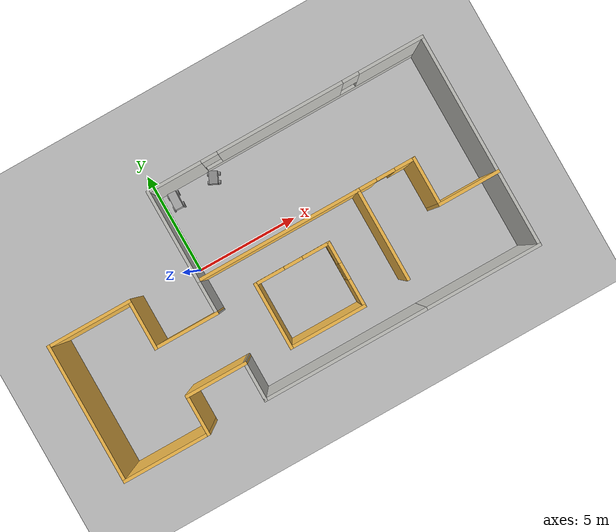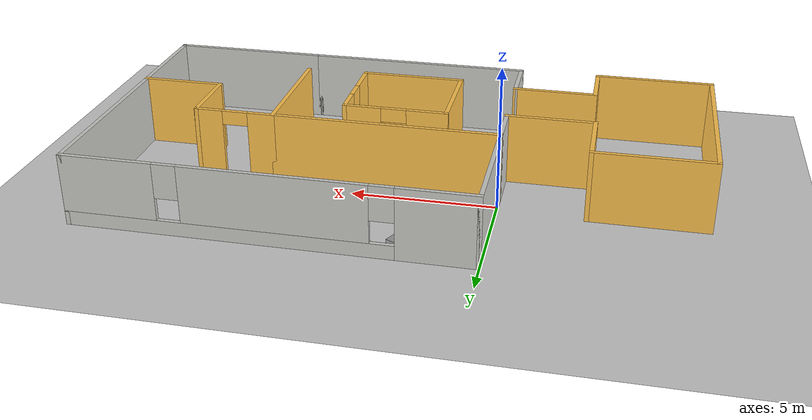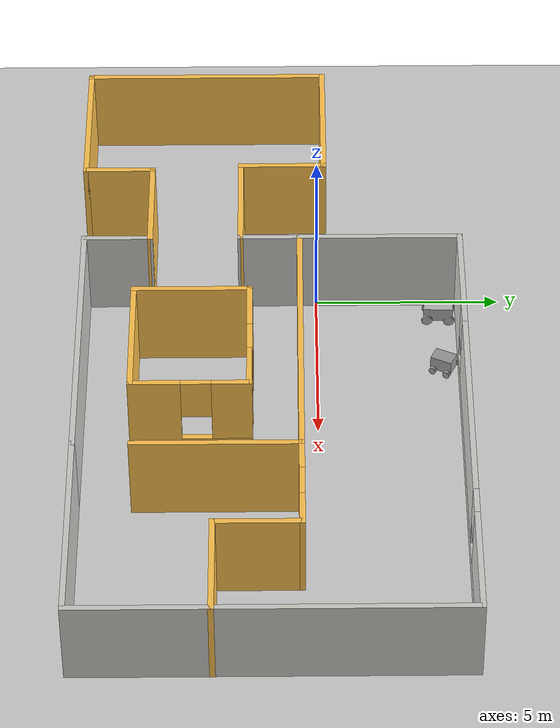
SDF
<sdf version="1.6">
 <world name="default">
  <model name="ground_plane">
   <static>1</static>
   <link name="link">
    <collision name="collision">
     <geometry><plane><normal>0 0 1</normal><size>100 100</size></plane></geometry>
     <surface>
      <contact><collide_bitmask>65535</collide_bitmask></contact>
      <friction><ode><mu>100</mu><mu2>50</mu2></ode></friction>
     </surface>
    </collision>
    <visual name="visual">
     <cast_shadows>0</cast_shadows>
     <geometry><plane><normal>0 0 1</normal><size>100 100</size></plane></geometry>
     <material>
      <script><uri>file://media/materials/scripts/gazebo.material</uri><name>Gazebo/Grey</name></script>
     </material>
    </visual>
   </link>
  </model>
  <model name="building">
   <pose>3.27409 -1.24254 0 0 -0 0</pose>
   <link name="Wall_1">
    <collision name="Wall_1_Collision">
     <geometry><box><size>0.15 0.15 2.5</size></box></geometry>
     <pose>0 0 1.25 0 -0 0</pose>
    </collision>
    <visual name="Wall_1_Visual">
     <pose>0 0 1.25 0 -0 0</pose>
     <geometry><box><size>0.15 0.15 2.5</size></box></geometry>
     <material>
      <script><uri>file://media/materials/scripts/gazebo.material</uri><name>Gazebo/Grey</name></script>
      <ambient>1 1 1 1</ambient>
     </material>
     <meta><layer>0</layer></meta>
    </visual>
    <pose>-3.253 -5.0694 0 0 -0 0</pose>
   </link>
   <link name="Wall_10">
    <collision name="Wall_10_Collision">
     <geometry><box><size>3 0.15 2.5</size></box></geometry>
     <pose>0 0 1.25 0 -0 0</pose>
    </collision>
    <visual name="Wall_10_Visual">
     <pose>0 0 1.25 0 -0 0</pose>
     <geometry><box><size>3 0.15 2.5</size></box></geometry>
     <material>
      <script><uri>file://media/materials/scripts/gazebo.material</uri><name>Gazebo/Grey</name></script>
      <ambient>1 0.764706 0.305882 1</ambient>
     </material>
     <meta><layer>0</layer></meta>
    </visual>
    <pose>8.772 -1.4694 0 0 -0 3.14159</pose>
   </link>
   <link name="Wall_11">
    <collision name="Wall_11_Collision">
     <geometry><box><size>2.4 0.15 2.5</size></box></geometry>
     <pose>0 0 1.25 0 -0 0</pose>
    </collision>
    <visual name="Wall_11_Visual">
     <pose>0 0 1.25 0 -0 0</pose>
     <geometry><box><size>2.4 0.15 2.5</size></box></geometry>
     <material>
      <script><uri>file://media/materials/scripts/gazebo.material</uri><name>Gazebo/Grey</name></script>
      <ambient>1 0.764706 0.305882 1</ambient>
     </material>
     <meta><layer>0</layer></meta>
    </visual>
    <pose>7.347 -0.344396 0 0 -0 1.5708</pose>
   </link>
   <link name="Wall_14">
    <pose>5.972 0.780604 0 0 -0 0</pose>
    <visual name="Wall_14_Visual_0">
     <pose>-0.96253 0 1.25 0 -0 0</pose>
     <geometry><box><size>0.974941 0.15 2.5</size></box></geometry>
     <material>
      <script><uri>file://media/materials/scripts/gazebo.material</uri><name>Gazebo/Grey</name></script>
      <ambient>1 0.764706 0.305882 1</ambient>
     </material>
     <meta><layer>0</layer></meta>
    </visual>
    <collision name="Wall_14_Collision_0">
     <geometry><box><size>0.974941 0.15 2.5</size></box></geometry>
     <pose>-0.96253 0 1.25 0 -0 0</pose>
    </collision>
    <visual name="Wall_14_Visual_1">
     <pose>0.93747 0 1.25 0 -0 0</pose>
     <geometry><box><size>1.02506 0.15 2.5</size></box></geometry>
     <material>
      <script><uri>file://media/materials/scripts/gazebo.material</uri><name>Gazebo/Grey</name></script>
      <ambient>1 0.764706 0.305882 1</ambient>
     </material>
     <meta><layer>0</layer></meta>
    </visual>
    <collision name="Wall_14_Collision_1">
     <geometry><box><size>1.02506 0.15 2.5</size></box></geometry>
     <pose>0.93747 0 1.25 0 -0 0</pose>
    </collision>
    <visual name="Wall_14_Visual_2">
     <pose>-0.025059 0 2.25 0 -0 0</pose>
     <geometry><box><size>0.9 0.15 0.5</size></box></geometry>
     <material>
      <script><uri>file://media/materials/scripts/gazebo.material</uri><name>Gazebo/Grey</name></script>
      <ambient>1 0.764706 0.305882 1</ambient>
     </material>
     <meta><layer>0</layer></meta>
    </visual>
    <collision name="Wall_14_Collision_2">
     <geometry><box><size>0.9 0.15 0.5</size></box></geometry>
     <pose>-0.025059 0 2.25 0 -0 0</pose>
    </collision>
   </link>
   <link name="Wall_17">
    <collision name="Wall_17_Collision">
     <geometry><box><size>3 0.15 2.5</size></box></geometry>
     <pose>0 0 1.25 0 -0 0</pose>
    </collision>
    <visual name="Wall_17_Visual">
     <pose>0 0 1.25 0 -0 0</pose>
     <geometry><box><size>3 0.15 2.5</size></box></geometry>
     <material>
      <script><uri>file://media/materials/scripts/gazebo.material</uri><name>Gazebo/Grey</name></script>
      <ambient>1 0.764706 0.305882 1</ambient>
     </material>
     <meta><layer>0</layer></meta>
    </visual>
    <pose>-4.67154 -0.826749 0 0 -0 3.14159</pose>
   </link>
   <link name="Wall_19">
    <collision name="Wall_19_Collision">
     <geometry><box><size>3 0.15 2.5</size></box></geometry>
     <pose>0 0 1.25 0 -0 0</pose>
    </collision>
    <visual name="Wall_19_Visual">
     <pose>0 0 1.25 0 -0 0</pose>
     <geometry><box><size>3 0.15 2.5</size></box></geometry>
     <material>
      <script><uri>file://media/materials/scripts/gazebo.material</uri><name>Gazebo/Grey</name></script>
      <ambient>1 0.764706 0.305882 1</ambient>
     </material>
     <meta><layer>0</layer></meta>
    </visual>
    <pose>-4.67154 -3.2806 0 0 -0 3.14159</pose>
   </link>
   <link name="Wall_20">
    <collision name="Wall_20_Collision">
     <geometry><box><size>2 0.15 2.5</size></box></geometry>
     <pose>0 0 1.25 0 -0 0</pose>
    </collision>
    <visual name="Wall_20_Visual">
     <pose>0 0 1.25 0 -0 0</pose>
     <geometry><box><size>2 0.15 2.5</size></box></geometry>
     <material>
      <script><uri>file://media/materials/scripts/gazebo.material</uri><name>Gazebo/Grey</name></script>
      <ambient>1 0.764706 0.305882 1</ambient>
     </material>
     <meta><layer>0</layer></meta>
    </visual>
    <pose>-6.09654 -4.2056 0 0 0 -1.5708</pose>
   </link>
   <link name="Wall_21">
    <collision name="Wall_21_Collision">
     <geometry><box><size>4.25 0.15 2.5</size></box></geometry>
     <pose>0 0 1.25 0 -0 0</pose>
    </collision>
    <visual name="Wall_21_Visual">
     <pose>0 0 1.25 0 -0 0</pose>
     <geometry><box><size>4.25 0.15 2.5</size></box></geometry>
     <material>
      <script><uri>file://media/materials/scripts/gazebo.material</uri><name>Gazebo/Grey</name></script>
      <ambient>1 0.764706 0.305882 1</ambient>
     </material>
     <meta><layer>0</layer></meta>
    </visual>
    <pose>-8.14654 -5.13061 0 0 -0 3.14159</pose>
   </link>
   <link name="Wall_22">
    <collision name="Wall_22_Collision">
     <geometry><box><size>6.75 0.15 2.5</size></box></geometry>
     <pose>0 0 1.25 0 -0 0</pose>
    </collision>
    <visual name="Wall_22_Visual">
     <pose>0 0 1.25 0 -0 0</pose>
     <geometry><box><size>6.75 0.15 2.5</size></box></geometry>
     <material>
      <script><uri>file://media/materials/scripts/gazebo.material</uri><name>Gazebo/Grey</name></script>
      <ambient>1 0.764706 0.305882 1</ambient>
     </material>
     <meta><layer>0</layer></meta>
    </visual>
    <pose>-10.1968 -1.8305 0 0 -0 1.57087</pose>
   </link>
   <link name="Wall_23">
    <collision name="Wall_23_Collision">
     <geometry><box><size>4.1 0.15 2.5</size></box></geometry>
     <pose>0 0 1.25 0 -0 0</pose>
    </collision>
    <visual name="Wall_23_Visual">
     <pose>0 0 1.25 0 -0 0</pose>
     <geometry><box><size>4.1 0.15 2.5</size></box></geometry>
     <material>
      <script><uri>file://media/materials/scripts/gazebo.material</uri><name>Gazebo/Grey</name></script>
      <ambient>1 0.764706 0.305882 1</ambient>
     </material>
     <meta><layer>0</layer></meta>
    </visual>
    <pose>-8.222 1.4696 0 0 -0 0</pose>
   </link>
   <link name="Wall_25">
    <collision name="Wall_25_Collision">
     <geometry><box><size>2.45 0.15 2.5</size></box></geometry>
     <pose>0 0 1.25 0 -0 0</pose>
    </collision>
    <visual name="Wall_25_Visual">
     <pose>0 0 1.25 0 -0 0</pose>
     <geometry><box><size>2.45 0.15 2.5</size></box></geometry>
     <material>
      <script><uri>file://media/materials/scripts/gazebo.material</uri><name>Gazebo/Grey</name></script>
      <ambient>1 0.764706 0.305882 1</ambient>
     </material>
     <meta><layer>0</layer></meta>
    </visual>
    <pose>-6.247 0.319604 0 0 0 -1.5708</pose>
   </link>
   <link name="Wall_28">
    <collision name="Wall_28_Collision">
     <geometry><box><size>3.25 0.15 2.5</size></box></geometry>
     <pose>0 0 1.25 0 -0 0</pose>
    </collision>
    <visual name="Wall_28_Visual">
     <pose>0 0 1.25 0 -0 0</pose>
     <geometry><box><size>3.25 0.15 2.5</size></box></geometry>
     <material>
      <script><uri>file://media/materials/scripts/gazebo.material</uri><name>Gazebo/Grey</name></script>
      <ambient>1 0.764706 0.305882 1</ambient>
     </material>
     <meta><layer>0</layer></meta>
    </visual>
    <pose>-1.19495 -2.11527 0 0 0 -1.5708</pose>
   </link>
   <link name="Wall_29">
    <collision name="Wall_29_Collision">
     <geometry><box><size>3.75 0.15 2.5</size></box></geometry>
     <pose>0 0 1.25 0 -0 0</pose>
    </collision>
    <visual name="Wall_29_Visual">
     <pose>0 0 1.25 0 -0 0</pose>
     <geometry><box><size>3.75 0.15 2.5</size></box></geometry>
     <material>
      <script><uri>file://media/materials/scripts/gazebo.material</uri><name>Gazebo/Grey</name></script>
      <ambient>1 0.764706 0.305882 1</ambient>
     </material>
     <meta><layer>0</layer></meta>
    </visual>
    <pose>0.605046 -3.66527 0 0 -0 0</pose>
   </link>
   <link name="Wall_30">
    <pose>2.40505 -2.11527 0 0 -0 1.5708</pose>
    <visual name="Wall_30_Visual_0">
     <pose>-0.931418 0 1.25 0 -0 0</pose>
     <geometry><box><size>1.38716 0.15 2.5</size></box></geometry>
     <material>
      <script><uri>file://media/materials/scripts/gazebo.material</uri><name>Gazebo/Grey</name></script>
      <ambient>1 0.764706 0.305882 1</ambient>
     </material>
     <meta><layer>0</layer></meta>
    </visual>
    <collision name="Wall_30_Collision_0">
     <geometry><box><size>1.38716 0.15 2.5</size></box></geometry>
     <pose>-0.931418 0 1.25 0 -0 0</pose>
    </collision>
    <visual name="Wall_30_Visual_1">
     <pose>0.693582 0 0.25 0 -0 0</pose>
     <geometry><box><size>1.86284 0.15 0.5</size></box></geometry>
     <material>
      <script><uri>file://media/materials/scripts/gazebo.material</uri><name>Gazebo/Grey</name></script>
      <ambient>1 0.764706 0.305882 1</ambient>
     </material>
     <meta><layer>0</layer></meta>
    </visual>
    <collision name="Wall_30_Collision_1">
     <geometry><box><size>1.86284 0.15 0.5</size></box></geometry>
     <pose>0.693582 0 0.25 0 -0 0</pose>
    </collision>
    <visual name="Wall_30_Visual_2">
     <pose>1.09358 0 1.5 0 -0 0</pose>
     <geometry><box><size>1.06284 0.15 2</size></box></geometry>
     <material>
      <script><uri>file://media/materials/scripts/gazebo.material</uri><name>Gazebo/Grey</name></script>
      <ambient>1 0.764706 0.305882 1</ambient>
     </material>
     <meta><layer>0</layer></meta>
    </visual>
    <collision name="Wall_30_Collision_2">
     <geometry><box><size>1.06284 0.15 2</size></box></geometry>
     <pose>1.09358 0 1.5 0 -0 0</pose>
    </collision>
    <visual name="Wall_30_Visual_3">
     <pose>0.162163 0 1.9 0 -0 0</pose>
     <geometry><box><size>0.8 0.15 1.2</size></box></geometry>
     <material>
      <script><uri>file://media/materials/scripts/gazebo.material</uri><name>Gazebo/Grey</name></script>
      <ambient>1 0.764706 0.305882 1</ambient>
     </material>
     <meta><layer>0</layer></meta>
    </visual>
    <collision name="Wall_30_Collision_3">
     <geometry><box><size>0.8 0.15 1.2</size></box></geometry>
     <pose>0.162163 0 1.9 0 -0 0</pose>
    </collision>
   </link>
   <link name="Wall_31">
    <pose>0.605046 -0.565272 0 0 -0 3.14159</pose>
    <visual name="Wall_31_Visual_0">
     <pose>-1.18772 0 1.25 0 -0 0</pose>
     <geometry><box><size>1.37455 0.15 2.5</size></box></geometry>
     <material>
      <script><uri>file://media/materials/scripts/gazebo.material</uri><name>Gazebo/Grey</name></script>
      <ambient>1 0.764706 0.305882 1</ambient>
     </material>
     <meta><layer>0</layer></meta>
    </visual>
    <collision name="Wall_31_Collision_0">
     <geometry><box><size>1.37455 0.15 2.5</size></box></geometry>
     <pose>-1.18772 0 1.25 0 -0 0</pose>
    </collision>
    <visual name="Wall_31_Visual_1">
     <pose>1.13728 0 1.25 0 -0 0</pose>
     <geometry><box><size>1.47545 0.15 2.5</size></box></geometry>
     <material>
      <script><uri>file://media/materials/scripts/gazebo.material</uri><name>Gazebo/Grey</name></script>
      <ambient>1 0.764706 0.305882 1</ambient>
     </material>
     <meta><layer>0</layer></meta>
    </visual>
    <collision name="Wall_31_Collision_1">
     <geometry><box><size>1.47545 0.15 2.5</size></box></geometry>
     <pose>1.13728 0 1.25 0 -0 0</pose>
    </collision>
    <visual name="Wall_31_Visual_2">
     <pose>-0.050449 0 2.25 0 -0 0</pose>
     <geometry><box><size>0.9 0.15 0.5</size></box></geometry>
     <material>
      <script><uri>file://media/materials/scripts/gazebo.material</uri><name>Gazebo/Grey</name></script>
      <ambient>1 0.764706 0.305882 1</ambient>
     </material>
     <meta><layer>0</layer></meta>
    </visual>
    <collision name="Wall_31_Collision_2">
     <geometry><box><size>0.9 0.15 0.5</size></box></geometry>
     <pose>-0.050449 0 2.25 0 -0 0</pose>
    </collision>
   </link>
   <link name="Wall_33">
    <collision name="Wall_33_Collision">
     <geometry><box><size>4.5 0.15 2.5</size></box></geometry>
     <pose>0 0 1.25 0 -0 0</pose>
    </collision>
    <visual name="Wall_33_Visual">
     <pose>0 0 1.25 0 -0 0</pose>
     <geometry><box><size>4.5 0.15 2.5</size></box></geometry>
     <material>
      <script><uri>file://media/materials/scripts/gazebo.material</uri><name>Gazebo/CeilingTiled</name></script>
      <ambient>1 1 1 1</ambient>
     </material>
     <meta><layer>0</layer></meta>
    </visual>
    <pose>-3.253 2.9556 0 0 -0 1.5708</pose>
   </link>
   <link name="Wall_34">
    <pose>3.472 5.1306 0 0 -0 0</pose>
    <visual name="Wall_34_Visual_0">
     <pose>-5.46145 0 1.25 0 -0 0</pose>
     <geometry><box><size>2.6771 0.15 2.5</size></box></geometry>
     <material>
      <script><uri>file://media/materials/scripts/gazebo.material</uri><name>Gazebo/CeilingTiled</name></script>
      <ambient>1 1 1 1</ambient>
     </material>
     <meta><layer>0</layer></meta>
    </visual>
    <collision name="Wall_34_Collision_0">
     <geometry><box><size>2.6771 0.15 2.5</size></box></geometry>
     <pose>-5.46145 0 1.25 0 -0 0</pose>
    </collision>
    <visual name="Wall_34_Visual_1">
     <pose>1.33855 0 0.25 0 -0 0</pose>
     <geometry><box><size>10.9229 0.15 0.5</size></box></geometry>
     <material>
      <script><uri>file://media/materials/scripts/gazebo.material</uri><name>Gazebo/CeilingTiled</name></script>
      <ambient>1 1 1 1</ambient>
     </material>
     <meta><layer>0</layer></meta>
    </visual>
    <collision name="Wall_34_Collision_1">
     <geometry><box><size>10.9229 0.15 0.5</size></box></geometry>
     <pose>1.33855 0 0.25 0 -0 0</pose>
    </collision>
    <visual name="Wall_34_Visual_2">
     <pose>-0.25158 0 1.5 0 -0 0</pose>
     <geometry><box><size>6.14265 0.15 2</size></box></geometry>
     <material>
      <script><uri>file://media/materials/scripts/gazebo.material</uri><name>Gazebo/CeilingTiled</name></script>
      <ambient>1 1 1 1</ambient>
     </material>
     <meta><layer>0</layer></meta>
    </visual>
    <collision name="Wall_34_Collision_2">
     <geometry><box><size>6.14265 0.15 2</size></box></geometry>
     <pose>-0.25158 0 1.5 0 -0 0</pose>
    </collision>
    <visual name="Wall_34_Visual_3">
     <pose>5.20987 0 1.5 0 -0 0</pose>
     <geometry><box><size>3.18025 0.15 2</size></box></geometry>
     <material>
      <script><uri>file://media/materials/scripts/gazebo.material</uri><name>Gazebo/CeilingTiled</name></script>
      <ambient>1 1 1 1</ambient>
     </material>
     <meta><layer>0</layer></meta>
    </visual>
    <collision name="Wall_34_Collision_3">
     <geometry><box><size>3.18025 0.15 2</size></box></geometry>
     <pose>5.20987 0 1.5 0 -0 0</pose>
    </collision>
    <visual name="Wall_34_Visual_4">
     <pose>-3.7229 0 1.9 0 -0 0</pose>
     <geometry><box><size>0.8 0.15 1.2</size></box></geometry>
     <material>
      <script><uri>file://media/materials/scripts/gazebo.material</uri><name>Gazebo/CeilingTiled</name></script>
      <ambient>1 1 1 1</ambient>
     </material>
     <meta><layer>0</layer></meta>
    </visual>
    <collision name="Wall_34_Collision_4">
     <geometry><box><size>0.8 0.15 1.2</size></box></geometry>
     <pose>-3.7229 0 1.9 0 -0 0</pose>
    </collision>
    <visual name="Wall_34_Visual_5">
     <pose>3.21975 0 1.9 0 -0 0</pose>
     <geometry><box><size>0.8 0.15 1.2</size></box></geometry>
     <material>
      <script><uri>file://media/materials/scripts/gazebo.material</uri><name>Gazebo/CeilingTiled</name></script>
      <ambient>1 1 1 1</ambient>
     </material>
     <meta><layer>0</layer></meta>
    </visual>
    <collision name="Wall_34_Collision_5">
     <geometry><box><size>0.8 0.15 1.2</size></box></geometry>
     <pose>3.21975 0 1.9 0 -0 0</pose>
    </collision>
   </link>
   <link name="Wall_37">
    <collision name="Wall_37_Collision">
     <geometry><box><size>6.75 0.15 2.5</size></box></geometry>
     <pose>0 0 1.25 0 -0 0</pose>
    </collision>
    <visual name="Wall_37_Visual">
     <pose>0 0 1.25 0 -0 0</pose>
     <geometry><box><size>6.75 0.15 2.5</size></box></geometry>
     <material>
      <script><uri>file://media/materials/scripts/gazebo.material</uri><name>Gazebo/CeilingTiled</name></script>
      <ambient>1 1 1 1</ambient>
     </material>
     <meta><layer>0</layer></meta>
    </visual>
    <pose>10.197 1.8306 0 0 0 -1.5708</pose>
   </link>
   <link name="Wall_4">
    <collision name="Wall_4_Collision">
     <geometry><box><size>8 0.15 2.5</size></box></geometry>
     <pose>0 0 1.25 0 -0 0</pose>
    </collision>
    <visual name="Wall_4_Visual">
     <pose>0 0 1.25 0 -0 0</pose>
     <geometry><box><size>8 0.15 2.5</size></box></geometry>
     <material>
      <script><uri>file://media/materials/scripts/gazebo.material</uri><name>Gazebo/Grey</name></script>
      <ambient>1 0.764706 0.305882 1</ambient>
     </material>
     <meta><layer>0</layer></meta>
    </visual>
    <pose>0.672003 0.780604 0 0 -0 0</pose>
   </link>
   <link name="Wall_40">
    <collision name="Wall_40_Collision">
     <geometry><box><size>1.75737 0.15 2.5</size></box></geometry>
     <pose>0 0 1.25 0 -0 0</pose>
    </collision>
    <visual name="Wall_40_Visual">
     <pose>0 0 1.25 0 -0 0</pose>
     <geometry><box><size>1.75737 0.15 2.5</size></box></geometry>
     <material>
      <script><uri>file://media/materials/scripts/gazebo.material</uri><name>Gazebo/CeilingTiled</name></script>
      <ambient>1 1 1 1</ambient>
     </material>
     <meta><layer>0</layer></meta>
    </visual>
    <pose>-3.24977 -0.023072 0 0 -0 1.57481</pose>
   </link>
   <link name="Wall_42">
    <collision name="Wall_42_Collision">
     <geometry><box><size>1.9388 0.15 2.5</size></box></geometry>
     <pose>0 0 1.25 0 -0 0</pose>
    </collision>
    <visual name="Wall_42_Visual">
     <pose>0 0 1.25 0 -0 0</pose>
     <geometry><box><size>1.9388 0.15 2.5</size></box></geometry>
     <material>
      <script><uri>file://media/materials/scripts/gazebo.material</uri><name>Gazebo/CeilingTiled</name></script>
      <ambient>1 1 1 1</ambient>
     </material>
     <meta><layer>0</layer></meta>
    </visual>
    <pose>-3.24977 -4.175 0 0 -0 1.56719</pose>
   </link>
   <link name="Wall_44">
    <collision name="Wall_44_Collision">
     <geometry><box><size>4.5 0.15 2.5</size></box></geometry>
     <pose>0 0 1.25 0 -0 0</pose>
    </collision>
    <visual name="Wall_44_Visual">
     <pose>0 0 1.25 0 -0 0</pose>
     <geometry><box><size>4.5 0.15 2.5</size></box></geometry>
     <material>
      <script><uri>file://media/materials/scripts/gazebo.material</uri><name>Gazebo/Grey</name></script>
      <ambient>1 0.764706 0.305882 1</ambient>
     </material>
     <meta><layer>0</layer></meta>
    </visual>
    <pose>4.597 -1.3944 0 0 0 -1.5708</pose>
   </link>
   <link name="Wall_7">
    <collision name="Wall_7_Collision">
     <geometry><box><size>8 0.15 2.5</size></box></geometry>
     <pose>0 0 1.25 0 -0 0</pose>
    </collision>
    <visual name="Wall_7_Visual">
     <pose>0 0 1.25 0 -0 0</pose>
     <geometry><box><size>8 0.15 2.5</size></box></geometry>
     <material>
      <script><uri>file://media/materials/scripts/gazebo.material</uri><name>Gazebo/CeilingTiled</name></script>
      <ambient>1 1 1 1</ambient>
     </material>
     <meta><layer>0</layer></meta>
    </visual>
    <pose>0.672003 -5.0694 0 0 -0 0</pose>
   </link>
   <link name="Wall_8">
    <collision name="Wall_8_Collision">
     <geometry><box><size>5.75 0.15 2.5</size></box></geometry>
     <pose>0 0 1.25 0 -0 0</pose>
    </collision>
    <visual name="Wall_8_Visual">
     <pose>0 0 1.25 0 -0 0</pose>
     <geometry><box><size>5.75 0.15 2.5</size></box></geometry>
     <material>
      <script><uri>file://media/materials/scripts/gazebo.material</uri><name>Gazebo/CeilingTiled</name></script>
      <ambient>1 1 1 1</ambient>
     </material>
     <meta><layer>0</layer></meta>
    </visual>
    <pose>7.397 -5.0694 0 0 -0 0</pose>
   </link>
   <link name="Wall_9">
    <collision name="Wall_9_Collision">
     <geometry><box><size>3.75 0.15 2.5</size></box></geometry>
     <pose>0 0 1.25 0 -0 0</pose>
    </collision>
    <visual name="Wall_9_Visual">
     <pose>0 0 1.25 0 -0 0</pose>
     <geometry><box><size>3.75 0.15 2.5</size></box></geometry>
     <material>
      <script><uri>file://media/materials/scripts/gazebo.material</uri><name>Gazebo/CeilingTiled</name></script>
      <ambient>1 1 1 1</ambient>
     </material>
     <meta><layer>0</layer></meta>
    </visual>
    <pose>10.197 -3.2694 0 0 -0 1.5708</pose>
   </link>
   <static>1</static>
  </model>
  <model name="wayhicle_0">
   <link name="link_0">
    <pose>0 0 0.16 0 -0 0</pose>
    <inertial>
     <mass>1</mass>
     <inertia>
      <ixx>0.166667</ixx>
      <ixy>0</ixy>
      <ixz>0</ixz>
      <iyy>0.166667</iyy>
      <iyz>0</iyz>
      <izz>0.166667</izz>
     </inertia>
    </inertial>
    <visual name="visual">
     <geometry><box><size>0.4 0.6 0.4</size></box></geometry>
     <material>
      <lighting>1</lighting>
      <script><uri>file://media/materials/scripts/gazebo.material</uri><name>Gazebo/Grey</name></script>
      <shader type="pixel"><normal_map>__default__</normal_map></shader>
      <ambient>0.3 0.3 0.3 1</ambient>
      <diffuse>0.7 0.7 0.7 1</diffuse>
      <specular>0.01 0.01 0.01 1</specular>
      <emissive>0 0 0 1</emissive>
     </material>
    </visual>
    <collision name="collision">
     <geometry><box><size>0.4 0.6 0.4</size></box></geometry>
     <surface>
      <friction>
       <ode><mu>1</mu><mu2>1</mu2><fdir1>0 0 0</fdir1><slip1>0</slip1><slip2>0</slip2></ode>
       <torsional>
        <coefficient>1</coefficient>
        <patch_radius>0</patch_radius>
        <surface_radius>0</surface_radius>
        <use_patch_radius>1</use_patch_radius>
        <ode><slip>0</slip></ode>
       </torsional>
      </friction>
      <bounce><restitution_coefficient>0</restitution_coefficient><threshold>1e+06</threshold></bounce>
      <contact>
       <collide_without_contact>0</collide_without_contact>
       <collide_without_contact_bitmask>1</collide_without_contact_bitmask>
       <collide_bitmask>1</collide_bitmask>
       <ode>
        <soft_cfm>0</soft_cfm>
        <soft_erp>0.2</soft_erp>
        <kp>1e+13</kp>
        <kd>1</kd>
        <max_vel>0.01</max_vel>
        <min_depth>0</min_depth>
       </ode>
       <bullet>
        <split_impulse>1</split_impulse>
        <split_impulse_penetration_threshold>-0.01</split_impulse_penetration_threshold>
        <soft_cfm>0</soft_cfm>
        <soft_erp>0.2</soft_erp>
        <kp>1e+13</kp>
        <kd>1</kd>
       </bullet>
      </contact>
     </surface>
    </collision>
   </link>
   <link name="link_1">
    <pose>-0.25 -0.2 -0.04 1.5708 -0 1.5708</pose>
    <inertial>
     <mass>0.3</mass>
     <inertia><ixx>0.145833</ixx><ixy>0</ixy><ixz>0</ixz><iyy>0.145833</iyy><iyz>0</iyz><izz>0.125</izz></inertia>
    </inertial>
    <visual name="visual">
     <geometry><cylinder><radius>0.1</radius><length>0.1</length></cylinder></geometry>
     <material>
      <lighting>1</lighting>
      <script><uri>file://media/materials/scripts/gazebo.material</uri><name>Gazebo/Grey</name></script>
      <shader type="pixel"><normal_map>__default__</normal_map></shader>
      <ambient>0.3 0.3 0.3 1</ambient>
      <diffuse>0.7 0.7 0.7 1</diffuse>
      <specular>0.01 0.01 0.01 1</specular>
      <emissive>0 0 0 1</emissive>
     </material>
    </visual>
    <collision name="collision">
     <geometry><cylinder><radius>0.1</radius><length>0.1</length></cylinder></geometry>
     <surface>
      <friction>
       <ode><mu>1</mu><mu2>1</mu2><fdir1>0 0 0</fdir1><slip1>0</slip1><slip2>0</slip2></ode>
       <torsional>
        <coefficient>1</coefficient>
        <patch_radius>0</patch_radius>
        <surface_radius>0</surface_radius>
        <use_patch_radius>1</use_patch_radius>
        <ode><slip>0</slip></ode>
       </torsional>
      </friction>
      <bounce><restitution_coefficient>0</restitution_coefficient><threshold>1e+06</threshold></bounce>
      <contact>
       <collide_without_contact>0</collide_without_contact>
       <collide_without_contact_bitmask>1</collide_without_contact_bitmask>
       <collide_bitmask>1</collide_bitmask>
       <ode>
        <soft_cfm>0</soft_cfm>
        <soft_erp>0.2</soft_erp>
        <kp>1e+13</kp>
        <kd>1</kd>
        <max_vel>0.01</max_vel>
        <min_depth>0</min_depth>
       </ode>
       <bullet>
        <split_impulse>1</split_impulse>
        <split_impulse_penetration_threshold>-0.01</split_impulse_penetration_threshold>
        <soft_cfm>0</soft_cfm>
        <soft_erp>0.2</soft_erp>
        <kp>1e+13</kp>
        <kd>1</kd>
       </bullet>
      </contact>
     </surface>
    </collision>
   </link>
   <link name="link_1_clone">
    <pose>-0.25 0.2 -0.04 1.5708 -0 1.5708</pose>
    <inertial>
     <mass>0.3</mass>
     <inertia><ixx>0.145833</ixx><ixy>0</ixy><ixz>0</ixz><iyy>0.145833</iyy><iyz>0</iyz><izz>0.125</izz></inertia>
    </inertial>
    <visual name="visual">
     <geometry><cylinder><radius>0.1</radius><length>0.1</length></cylinder></geometry>
     <material>
      <lighting>1</lighting>
      <script><uri>file://media/materials/scripts/gazebo.material</uri><name>Gazebo/Grey</name></script>
      <shader type="pixel"><normal_map>__default__</normal_map></shader>
      <ambient>0.3 0.3 0.3 1</ambient>
      <diffuse>0.7 0.7 0.7 1</diffuse>
      <specular>0.01 0.01 0.01 1</specular>
      <emissive>0 0 0 1</emissive>
     </material>
    </visual>
    <collision name="collision">
     <geometry><cylinder><radius>0.1</radius><length>0.1</length></cylinder></geometry>
     <surface>
      <friction>
       <ode><mu>1</mu><mu2>1</mu2><fdir1>0 0 0</fdir1><slip1>0</slip1><slip2>0</slip2></ode>
       <torsional>
        <coefficient>1</coefficient>
        <patch_radius>0</patch_radius>
        <surface_radius>0</surface_radius>
        <use_patch_radius>1</use_patch_radius>
        <ode><slip>0</slip></ode>
       </torsional>
      </friction>
      <bounce><restitution_coefficient>0</restitution_coefficient><threshold>1e+06</threshold></bounce>
      <contact>
       <collide_without_contact>0</collide_without_contact>
       <collide_without_contact_bitmask>1</collide_without_contact_bitmask>
       <collide_bitmask>1</collide_bitmask>
       <ode>
        <soft_cfm>0</soft_cfm>
        <soft_erp>0.2</soft_erp>
        <kp>1e+13</kp>
        <kd>1</kd>
        <max_vel>0.01</max_vel>
        <min_depth>0</min_depth>
       </ode>
       <bullet>
        <split_impulse>1</split_impulse>
        <split_impulse_penetration_threshold>-0.01</split_impulse_penetration_threshold>
        <soft_cfm>0</soft_cfm>
        <soft_erp>0.2</soft_erp>
        <kp>1e+13</kp>
        <kd>1</kd>
       </bullet>
      </contact>
     </surface>
    </collision>
   </link>
   <link name="link_1_clone_0">
    <pose>0.25 -0.2 -0.04 1.5708 -0 1.5708</pose>
    <inertial>
     <mass>0.3</mass>
     <inertia><ixx>0.145833</ixx><ixy>0</ixy><ixz>0</ixz><iyy>0.145833</iyy><iyz>0</iyz><izz>0.125</izz></inertia>
    </inertial>
    <visual name="visual">
     <geometry><cylinder><radius>0.1</radius><length>0.1</length></cylinder></geometry>
     <material>
      <lighting>1</lighting>
      <script><uri>file://media/materials/scripts/gazebo.material</uri><name>Gazebo/Grey</name></script>
      <shader type="pixel"><normal_map>__default__</normal_map></shader>
      <ambient>0.3 0.3 0.3 1</ambient>
      <diffuse>0.7 0.7 0.7 1</diffuse>
      <specular>0.01 0.01 0.01 1</specular>
      <emissive>0 0 0 1</emissive>
     </material>
    </visual>
    <collision name="collision">
     <geometry><cylinder><radius>0.1</radius><length>0.1</length></cylinder></geometry>
     <surface>
      <friction>
       <ode><mu>1</mu><mu2>1</mu2><fdir1>0 0 0</fdir1><slip1>0</slip1><slip2>0</slip2></ode>
       <torsional>
        <coefficient>1</coefficient>
        <patch_radius>0</patch_radius>
        <surface_radius>0</surface_radius>
        <use_patch_radius>1</use_patch_radius>
        <ode><slip>0</slip></ode>
       </torsional>
      </friction>
      <bounce><restitution_coefficient>0</restitution_coefficient><threshold>1e+06</threshold></bounce>
      <contact>
       <collide_without_contact>0</collide_without_contact>
       <collide_without_contact_bitmask>1</collide_without_contact_bitmask>
       <collide_bitmask>1</collide_bitmask>
       <ode>
        <soft_cfm>0</soft_cfm>
        <soft_erp>0.2</soft_erp>
        <kp>1e+13</kp>
        <kd>1</kd>
        <max_vel>0.01</max_vel>
        <min_depth>0</min_depth>
       </ode>
       <bullet>
        <split_impulse>1</split_impulse>
        <split_impulse_penetration_threshold>-0.01</split_impulse_penetration_threshold>
        <soft_cfm>0</soft_cfm>
        <soft_erp>0.2</soft_erp>
        <kp>1e+13</kp>
        <kd>1</kd>
       </bullet>
      </contact>
     </surface>
    </collision>
   </link>
   <link name="link_1_clone_1">
    <pose>0.25 0.2 -0.04 1.5708 -0 1.5708</pose>
    <inertial>
     <mass>0.3</mass>
     <inertia><ixx>0.145833</ixx><ixy>0</ixy><ixz>0</ixz><iyy>0.145833</iyy><iyz>0</iyz><izz>0.125</izz></inertia>
    </inertial>
    <visual name="visual">
     <geometry><cylinder><radius>0.1</radius><length>0.1</length></cylinder></geometry>
     <material>
      <lighting>1</lighting>
      <script><uri>file://media/materials/scripts/gazebo.material</uri><name>Gazebo/Grey</name></script>
      <shader type="pixel"><normal_map>__default__</normal_map></shader>
      <ambient>0.3 0.3 0.3 1</ambient>
      <diffuse>0.7 0.7 0.7 1</diffuse>
      <specular>0.01 0.01 0.01 1</specular>
      <emissive>0 0 0 1</emissive>
     </material>
    </visual>
    <collision name="collision">
     <geometry><cylinder><radius>0.1</radius><length>0.1</length></cylinder></geometry>
     <surface>
      <friction>
       <ode><mu>1</mu><mu2>1</mu2><fdir1>0 0 0</fdir1><slip1>0</slip1><slip2>0</slip2></ode>
       <torsional>
        <coefficient>1</coefficient>
        <patch_radius>0</patch_radius>
        <surface_radius>0</surface_radius>
        <use_patch_radius>1</use_patch_radius>
        <ode><slip>0</slip></ode>
       </torsional>
      </friction>
      <bounce><restitution_coefficient>0</restitution_coefficient><threshold>1e+06</threshold></bounce>
      <contact>
       <collide_without_contact>0</collide_without_contact>
       <collide_without_contact_bitmask>1</collide_without_contact_bitmask>
       <collide_bitmask>1</collide_bitmask>
       <ode>
        <soft_cfm>0</soft_cfm>
        <soft_erp>0.2</soft_erp>
        <kp>1e+13</kp>
        <kd>1</kd>
        <max_vel>0.01</max_vel>
        <min_depth>0</min_depth>
       </ode>
       <bullet>
        <split_impulse>1</split_impulse>
        <split_impulse_penetration_threshold>-0.01</split_impulse_penetration_threshold>
        <soft_cfm>0</soft_cfm>
        <soft_erp>0.2</soft_erp>
        <kp>1e+13</kp>
        <kd>1</kd>
       </bullet>
      </contact>
     </surface>
    </collision>
   </link>
   <joint name="link_0_JOINT_0" type="revolute">
    <parent>link_0</parent>
    <child>link_1</child>
    <axis>
     <xyz>0 0 1</xyz>
     <use_parent_model_frame>0</use_parent_model_frame>
     <limit>
      <lower>-1.79769e+308</lower>
      <upper>1.79769e+308</upper>
      <effort>-1</effort>
      <velocity>-1</velocity>
     </limit>
     <dynamics>
      <spring_reference>0</spring_reference>
      <spring_stiffness>0</spring_stiffness>
      <damping>0</damping>
     </dynamics>
    </axis>
    <physics>
     <ode><limit><cfm>0</cfm><erp>0.2</erp></limit><suspension><cfm>0</cfm><erp>0.2</erp></suspension></ode>
    </physics>
   </joint>
   <joint name="link_0_JOINT_1" type="revolute">
    <parent>link_0</parent>
    <child>link_1_clone</child>
    <axis>
     <xyz>0 0 1</xyz>
     <use_parent_model_frame>0</use_parent_model_frame>
     <limit>
      <lower>-1.79769e+308</lower>
      <upper>1.79769e+308</upper>
      <effort>-1</effort>
      <velocity>-1</velocity>
     </limit>
     <dynamics>
      <spring_reference>0</spring_reference>
      <spring_stiffness>0</spring_stiffness>
      <damping>0</damping>
     </dynamics>
    </axis>
    <physics>
     <ode><limit><cfm>0</cfm><erp>0.2</erp></limit><suspension><cfm>0</cfm><erp>0.2</erp></suspension></ode>
    </physics>
   </joint>
   <joint name="link_0_JOINT_2" type="revolute">
    <parent>link_0</parent>
    <child>link_1_clone_0</child>
    <axis>
     <xyz>0 0 1</xyz>
     <use_parent_model_frame>0</use_parent_model_frame>
     <limit>
      <lower>-1.79769e+308</lower>
      <upper>1.79769e+308</upper>
      <effort>-1</effort>
      <velocity>-1</velocity>
     </limit>
     <dynamics>
      <spring_reference>0</spring_reference>
      <spring_stiffness>0</spring_stiffness>
      <damping>0</damping>
     </dynamics>
    </axis>
    <physics>
     <ode><limit><cfm>0</cfm><erp>0.2</erp></limit><suspension><cfm>0</cfm><erp>0.2</erp></suspension></ode>
    </physics>
   </joint>
   <joint name="link_0_JOINT_3" type="revolute">
    <parent>link_0</parent>
    <child>link_1_clone_1</child>
    <axis>
     <xyz>0 0 1</xyz>
     <use_parent_model_frame>0</use_parent_model_frame>
     <limit>
      <lower>-1.79769e+308</lower>
      <upper>1.79769e+308</upper>
      <effort>-1</effort>
      <velocity>-1</velocity>
     </limit>
     <dynamics>
      <spring_reference>0</spring_reference>
      <spring_stiffness>0</spring_stiffness>
      <damping>0</damping>
     </dynamics>
    </axis>
    <physics>
     <ode><limit><cfm>0</cfm><erp>0.2</erp></limit><suspension><cfm>0</cfm><erp>0.2</erp></suspension></ode>
    </physics>
   </joint>
   <static>0</static>
   <pose>2.66479 3.41315 0.14 -1e-06 -1e-06 -0.444676</pose>
  </model>
  <model name="servicerobot">
   <link name="robot_footprint">
    <inertial>
     <mass>8</mass>
     <inertia><ixx>0.1</ixx><ixy>0</ixy><ixz>0</ixz><iyy>0.1</iyy><iyz>0</iyz><izz>0.1</izz></inertia>
    </inertial>
    <collision name="robot_footprint_fixed_joint_lump__body_collision_collision">
     <geometry><box><size>0.8 0.4 0.4</size></box></geometry>
    </collision>
    <visual name="robot_footprint_fixed_joint_lump__body_visual_visual">
     <geometry><box><size>0.8 0.4 0.4</size></box></geometry>
    </visual>
   </link>
   <link name="back_left_wheel">
    <pose>-0.3 0.25 -0.15 0 -0 0</pose>
    <inertial>
     <mass>1</mass>
     <inertia><ixx>0.1</ixx><ixy>0</ixy><ixz>0</ixz><iyy>0.1</iyy><iyz>0</iyz><izz>0.1</izz></inertia>
    </inertial>
    <collision name="back_left_wheel_fixed_joint_lump__back_wheel1c_collision">
     <pose>0 0 0 3.14159 1.57079 -1.57089</pose>
     <geometry><cylinder><length>0.05</length><radius>0.15</radius></cylinder></geometry>
    </collision>
    <visual name="back_left_wheel_fixed_joint_lump__back_wheel1_visual">
     <pose>0 0 0 3.14159 1.57079 -1.57089</pose>
     <geometry><cylinder><length>0.05</length><radius>0.15</radius></cylinder></geometry>
    </visual>
   </link>
   <joint name="back_left_join" type="revolute">
    <child>back_left_wheel</child>
    <parent>robot_footprint</parent>
    <axis>
     <xyz>0 1 0</xyz>
     <limit><lower>-1e+16</lower><upper>1e+16</upper></limit>
     <dynamics><spring_reference>0</spring_reference><spring_stiffness>0</spring_stiffness></dynamics>
     <use_parent_model_frame>1</use_parent_model_frame>
    </axis>
   </joint>
   <link name="back_right_wheel">
    <pose>-0.3 -0.25 -0.15 0 -0 0</pose>
    <inertial>
     <mass>1</mass>
     <inertia><ixx>0.1</ixx><ixy>0</ixy><ixz>0</ixz><iyy>0.1</iyy><iyz>0</iyz><izz>0.1</izz></inertia>
    </inertial>
    <collision name="back_right_wheel_fixed_joint_lump__back_wheel2c_collision">
     <pose>0 0 0 3.14159 1.57079 -1.57089</pose>
     <geometry><cylinder><length>0.05</length><radius>0.15</radius></cylinder></geometry>
    </collision>
    <visual name="back_right_wheel_fixed_joint_lump__back_wheel2_visual">
     <pose>0 0 0 3.14159 1.57079 -1.57089</pose>
     <geometry><cylinder><length>0.05</length><radius>0.15</radius></cylinder></geometry>
    </visual>
   </link>
   <joint name="back_right_join" type="revolute">
    <child>back_right_wheel</child>
    <parent>robot_footprint</parent>
    <axis>
     <xyz>0 1 0</xyz>
     <limit><lower>-1e+16</lower><upper>1e+16</upper></limit>
     <dynamics><spring_reference>0</spring_reference><spring_stiffness>0</spring_stiffness></dynamics>
     <use_parent_model_frame>1</use_parent_model_frame>
    </axis>
   </joint>
   <link name="front_left_wheel">
    <pose>0.3 0.25 -0.15 0 -0 0</pose>
    <inertial>
     <mass>1</mass>
     <inertia><ixx>0.1</ixx><ixy>0</ixy><ixz>0</ixz><iyy>0.1</iyy><iyz>0</iyz><izz>0.1</izz></inertia>
    </inertial>
    <collision name="front_left_wheel_fixed_joint_lump__front_wheel1c_collision">
     <pose>0 0 0 3.14159 1.57079 -1.57089</pose>
     <geometry><cylinder><length>0.05</length><radius>0.15</radius></cylinder></geometry>
    </collision>
    <visual name="front_left_wheel_fixed_joint_lump__front_wheel1_visual">
     <pose>0 0 0 3.14159 1.57079 -1.57089</pose>
     <geometry><cylinder><length>0.05</length><radius>0.15</radius></cylinder></geometry>
    </visual>
   </link>
   <joint name="front_left_join" type="revolute">
    <child>front_left_wheel</child>
    <parent>robot_footprint</parent>
    <axis>
     <xyz>0 1 0</xyz>
     <limit><lower>-1e+16</lower><upper>1e+16</upper></limit>
     <dynamics><spring_reference>0</spring_reference><spring_stiffness>0</spring_stiffness></dynamics>
     <use_parent_model_frame>1</use_parent_model_frame>
    </axis>
   </joint>
   <link name="front_right_wheel">
    <pose>0.3 -0.25 -0.15 0 -0 0</pose>
    <inertial>
     <mass>1</mass>
     <inertia><ixx>0.1</ixx><ixy>0</ixy><ixz>0</ixz><iyy>0.1</iyy><iyz>0</iyz><izz>0.1</izz></inertia>
    </inertial>
    <collision name="front_right_wheel_fixed_joint_lump__front_wheel2c_collision">
     <pose>0 0 0 3.14159 1.57079 -1.57089</pose>
     <geometry><cylinder><length>0.05</length><radius>0.15</radius></cylinder></geometry>
    </collision>
    <visual name="front_right_wheel_fixed_joint_lump__front_wheel2_visual">
     <pose>0 0 0 3.14159 1.57079 -1.57089</pose>
     <geometry><cylinder><length>0.05</length><radius>0.15</radius></cylinder></geometry>
    </visual>
   </link>
   <joint name="front_right_join" type="revolute">
    <child>front_right_wheel</child>
    <parent>robot_footprint</parent>
    <axis>
     <xyz>0 1 0</xyz>
     <limit><lower>-1e+16</lower><upper>1e+16</upper></limit>
     <dynamics><spring_reference>0</spring_reference><spring_stiffness>0</spring_stiffness></dynamics>
     <use_parent_model_frame>1</use_parent_model_frame>
    </axis>
   </joint>
   <pose>0.635414 3.34254 0.3 7e-06 -1e-06 1.52411</pose>
  </model>
 </world>
</sdf>
